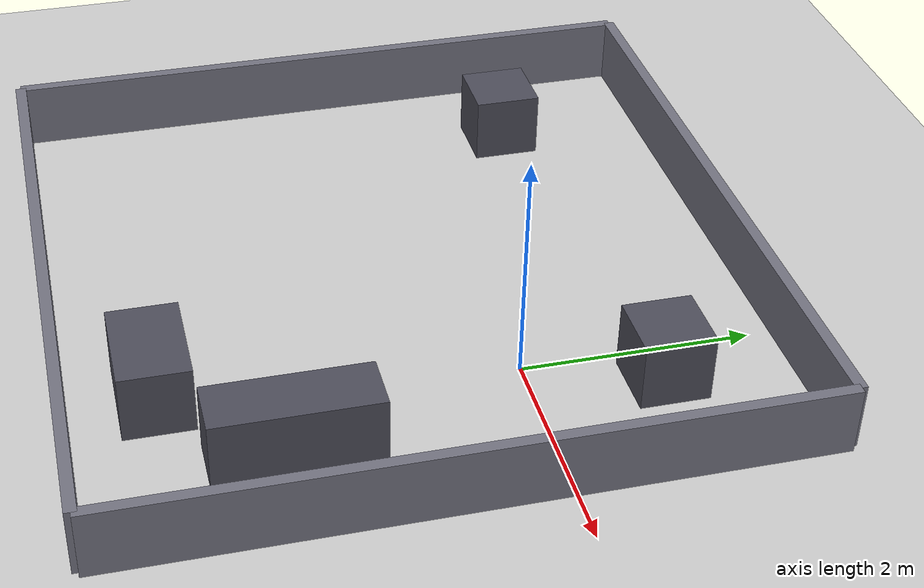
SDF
<?xml version="1.0"?>
<sdf version="1.8">
  <world name="tareas_room_world">

    <plugin filename="libignition-gazebo-physics-system.so"
      name="ignition::gazebo::systems::Physics"></plugin>
    <plugin filename="libignition-gazebo-scene-broadcaster-system.so"
      name="ignition::gazebo::systems::SceneBroadcaster"></plugin>
    <plugin filename="libignition-gazebo-user-commands-system.so"
      name="ignition::gazebo::systems::UserCommands"></plugin>
    <plugin filename="libignition-gazebo-sensors-system.so"
      name="ignition::gazebo::systems::Sensors">
      <render_engine>ogre2</render_engine>
    </plugin>
    <plugin filename="libignition-gazebo-imu-system.so"
      name="ignition::gazebo::systems::Imu"></plugin>

    <scene>
      <ambient>0.55 0.55 0.6 1.0</ambient>
      <background>0.85 0.87 0.9 1.0</background>
      <grid>false</grid>
    </scene>

    <physics name="3ms" type="ignored">
      <max_step_size>0.003</max_step_size>
      <real_time_factor>1.0</real_time_factor>
    </physics>

    <light type="directional" name="sun">
      <cast_shadows>true</cast_shadows>
      <pose>0 0 10 0 0 0</pose>
      <diffuse>0.5 0.5 0.5 1</diffuse>
      <specular>0.05 0.05 0.05 1</specular>
      <direction>-0.5 0.1 -0.9</direction>
    </light>

    <model name="ground_plane">
      <static>true</static>
      <link name="link">
        <collision name="collision">
          <geometry><plane><normal>0 0 1</normal><size>100 100</size></plane></geometry>
        </collision>
        <visual name="visual">
          <geometry><plane><normal>0 0 1</normal><size>100 100</size></plane></geometry>
          <material><ambient>0.8 0.8 0.8 1</ambient><diffuse>0.8 0.8 0.8 1</diffuse></material>
        </visual>
      </link>
    </model>

    <!-- ===== Cuarto 6x6 centrado en (-1.5,-0.75); paredes box, alto 0.6 ===== -->
    <!-- Macro manual: cada pared es un modelo estatico con colision+visual box. -->
    <model name="wall_n"><static>true</static><pose>-1.5 2.25 0.3 0 0 0</pose><link name="l">
      <collision name="c"><geometry><box><size>6.0 0.1 0.6</size></box></geometry></collision>
      <visual name="v"><geometry><box><size>6.0 0.1 0.6</size></box></geometry>
        <material><ambient>0.35 0.35 0.4 1</ambient><diffuse>0.45 0.45 0.5 1</diffuse></material></visual>
    </link></model>
    <model name="wall_s"><static>true</static><pose>-1.5 -3.75 0.3 0 0 0</pose><link name="l">
      <collision name="c"><geometry><box><size>6.0 0.1 0.6</size></box></geometry></collision>
      <visual name="v"><geometry><box><size>6.0 0.1 0.6</size></box></geometry>
        <material><ambient>0.35 0.35 0.4 1</ambient><diffuse>0.45 0.45 0.5 1</diffuse></material></visual>
    </link></model>
    <model name="wall_e"><static>true</static><pose>1.5 -0.75 0.3 0 0 0</pose><link name="l">
      <collision name="c"><geometry><box><size>0.1 6.0 0.6</size></box></geometry></collision>
      <visual name="v"><geometry><box><size>0.1 6.0 0.6</size></box></geometry>
        <material><ambient>0.35 0.35 0.4 1</ambient><diffuse>0.45 0.45 0.5 1</diffuse></material></visual>
    </link></model>
    <model name="wall_w"><static>true</static><pose>-4.5 -0.75 0.3 0 0 0</pose><link name="l">
      <collision name="c"><geometry><box><size>0.1 6.0 0.6</size></box></geometry></collision>
      <visual name="v"><geometry><box><size>0.1 6.0 0.6</size></box></geometry>
        <material><ambient>0.35 0.35 0.4 1</ambient><diffuse>0.45 0.45 0.5 1</diffuse></material></visual>
    </link></model>

    <!-- ===== Obstaculos internos (cajas), FUERA del circulo del robot ===== -->
    <model name="box1"><static>true</static><pose>0.4 1.1 0.3 0 0 0</pose><link name="l">
      <collision name="c"><geometry><box><size>0.6 0.6 0.6</size></box></geometry></collision>
      <visual name="v"><geometry><box><size>0.6 0.6 0.6</size></box></geometry>
        <material><ambient>0.2 0.2 0.25 1</ambient><diffuse>0.3 0.3 0.35 1</diffuse></material></visual>
    </link></model>
    <model name="box2"><static>true</static><pose>-3.5 0.8 0.3 0 0 0</pose><link name="l">
      <collision name="c"><geometry><box><size>0.6 0.6 0.6</size></box></geometry></collision>
      <visual name="v"><geometry><box><size>0.6 0.6 0.6</size></box></geometry>
        <material><ambient>0.2 0.2 0.25 1</ambient><diffuse>0.3 0.3 0.35 1</diffuse></material></visual>
    </link></model>
    <model name="box3"><static>true</static><pose>-0.3 -3.0 0.3 0 0 0</pose><link name="l">
      <collision name="c"><geometry><box><size>0.9 0.6 0.6</size></box></geometry></collision>
      <visual name="v"><geometry><box><size>0.9 0.6 0.6</size></box></geometry>
        <material><ambient>0.2 0.2 0.25 1</ambient><diffuse>0.3 0.3 0.35 1</diffuse></material></visual>
    </link></model>
    <model name="box4"><static>true</static><pose>0.6 -2.0 0.3 0 0 0</pose><link name="l">
      <collision name="c"><geometry><box><size>0.5 1.4 0.6</size></box></geometry></collision>
      <visual name="v"><geometry><box><size>0.5 1.4 0.6</size></box></geometry>
        <material><ambient>0.2 0.2 0.25 1</ambient><diffuse>0.3 0.3 0.35 1</diffuse></material></visual>
    </link></model>

  </world>
</sdf>
